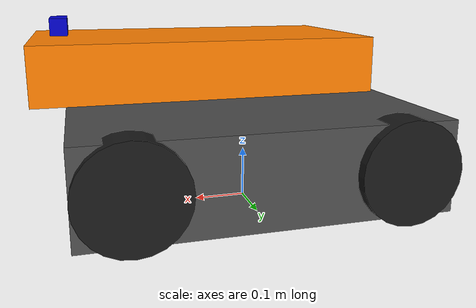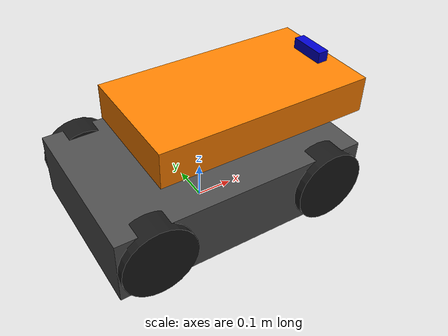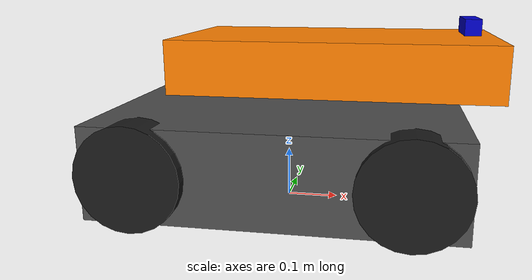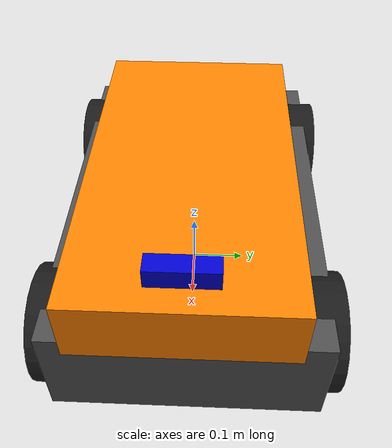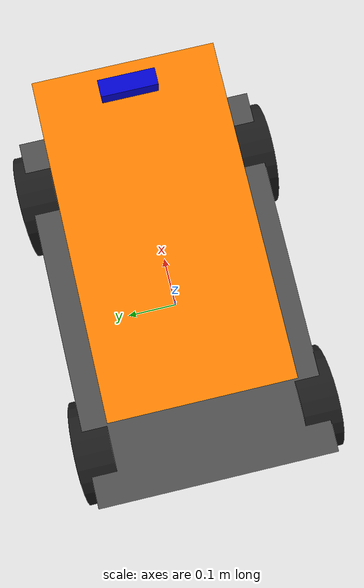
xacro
<?xml version="1.0"?>
<robot xmlns:xacro="http://www.ros.org/wiki/xacro" name="mecanum_robot">

  <!-- Define properties based on your CAD model -->
  <xacro:property name="base_length" value="0.7"/>  <!-- 700mm -->
  <xacro:property name="base_width" value="0.45"/>   <!-- 450mm -->
  <xacro:property name="base_height" value="0.18"/>  <!-- 180mm -->

  <!-- Mecanum wheel properties -->
  <xacro:property name="wheel_radius" value="0.1"/>  <!-- 100mm radius = 200mm diameter -->
  <xacro:property name="wheel_width" value="0.07"/>  <!-- 70mm width -->
  <xacro:property name="wheelbase" value="0.5"/>     <!-- 500mm front to back -->
  <xacro:property name="track_width" value="0.425"/> <!-- 425mm left to right -->

  <!-- Lifting arm properties -->
  <xacro:property name="arm_length" value="0.6"/>    <!-- 600mm -->
  <xacro:property name="arm_width" value="0.325"/>   <!-- 325mm -->
  <xacro:property name="arm_height" value="0.1"/>    <!-- 100mm -->

  <!-- Base Footprint -->
  <link name="base_footprint"/>

  <!-- Base Link (Main Chassis) -->
  <link name="base_link">
    <visual>
      <geometry>
        <box size="${base_length} ${base_width} ${base_height}"/>
      </geometry>
      <material name="dark_grey">
        <color rgba="0.3 0.3 0.3 1"/>
      </material>
    </visual>
    <collision>
      <geometry>
        <box size="${base_length} ${base_width} ${base_height}"/>
      </geometry>
    </collision>
    <inertial>
      <mass value="15.0"/>  <!-- Heavier base for your robot -->
      <inertia ixx="0.5" ixy="0.0" ixz="0.0" iyy="0.8" iyz="0.0" izz="1.0"/>
    </inertial>
  </link>

  <joint name="base_joint" type="fixed">
    <parent link="base_footprint"/>
    <child link="base_link"/>
    <origin xyz="0 0 ${wheel_radius}" rpy="0 0 0"/>
  </joint>

  <!-- Mecanum Wheels Macro -->
  <xacro:macro name="mecanum_wheel" params="prefix reflect_x reflect_y">
    <link name="${prefix}_wheel">
      <visual>
        <geometry>
          <cylinder radius="${wheel_radius}" length="${wheel_width}"/>
        </geometry>
        <material name="black">
          <color rgba="0.1 0.1 0.1 1"/>
        </material>
      </visual>
      <collision>
        <geometry>
          <cylinder radius="${wheel_radius}" length="${wheel_width}"/>
        </geometry>
      </collision>
      <inertial>
        <mass value="1.5"/>
        <inertia ixx="0.01" ixy="0.0" ixz="0.0" iyy="0.01" iyz="0.0" izz="0.015"/>
      </inertial>
    </link>

    <joint name="${prefix}_wheel_joint" type="continuous">
      <parent link="base_link"/>
      <child link="${prefix}_wheel"/>
      <origin xyz="${reflect_x*wheelbase/2} ${reflect_y*track_width/2} 0" rpy="-1.5707 0 0"/>
      <axis xyz="0 0 1"/>
    </joint>
  </xacro:macro>

  <!-- Create 4 mecanum wheels -->
  <xacro:mecanum_wheel prefix="front_left" reflect_x="1" reflect_y="1"/>
  <xacro:mecanum_wheel prefix="front_right" reflect_x="1" reflect_y="-1"/>
  <xacro:mecanum_wheel prefix="rear_left" reflect_x="-1" reflect_y="1"/>
  <xacro:mecanum_wheel prefix="rear_right" reflect_x="-1" reflect_y="-1"/>

  <!-- Lifting Arm Base -->
  <link name="arm_base">
    <visual>
      <geometry>
        <box size="${arm_length} ${arm_width} ${arm_height}"/>
      </geometry>
      <material name="orange">
        <color rgba="1.0 0.5 0.0 1"/>
      </material>
    </visual>
    <collision>
      <geometry>
        <box size="${arm_length} ${arm_width} ${arm_height}"/>
      </geometry>
    </collision>
    <inertial>
      <mass value="2.0"/>
      <inertia ixx="0.02" ixy="0.0" ixz="0.0" iyy="0.06" iyz="0.0" izz="0.06"/>
    </inertial>
  </link>

  <joint name="arm_base_joint" type="fixed">
    <parent link="base_link"/>
    <child link="arm_base"/>
    <origin xyz="0.1 0 ${base_height/2 + arm_height/2 + 0.05}" rpy="0 0 0"/>
  </joint>

  <!-- LiDAR Sensor (mounted on top) -->
  <link name="laser_link">
    <visual>
      <geometry>
        <cylinder radius="0.05" length="0.07"/>
      </geometry>
      <material name="red">
        <color rgba="1 0 0 1"/>
      </material>
    </visual>
    <collision>
      <geometry>
        <cylinder radius="0.05" length="0.07"/>
      </geometry>
    </collision>
    <inertial>
      <mass value="0.2"/>
      <inertia ixx="0.0001" ixy="0.0" ixz="0.0" iyy="0.0001" iyz="0.0" izz="0.0001"/>
    </inertial>
  </link>

  <joint name="laser_joint" type="fixed">
    <parent link="base_link"/>
    <child link="laser_link"/>
    <origin xyz="0.25 0 ${base_height/2 + 0.1}" rpy="0 0 0"/>
  </joint>

  <!-- Camera (USB Camera) -->
  <link name="camera_link">
    <visual>
      <geometry>
        <box size="0.03 0.1 0.03"/>
      </geometry>
      <material name="blue">
        <color rgba="0 0 0.8 1"/>
      </material>
    </visual>
    <collision>
      <geometry>
        <box size="0.03 0.1 0.03"/>
      </geometry>
    </collision>
    <inertial>
      <mass value="0.1"/>
      <inertia ixx="0.0001" ixy="0.0" ixz="0.0" iyy="0.0001" iyz="0.0" izz="0.0001"/>
    </inertial>
  </link>

  <joint name="camera_joint" type="fixed">
    <parent link="arm_base"/>
    <child link="camera_link"/>
    <origin xyz="${arm_length/2 - 0.05} 0 ${arm_height/2 + 0.02}" rpy="0 0 0"/>
  </joint>

  <!-- Gazebo Plugins -->

  <!-- Mecanum Drive Plugin -->
  <gazebo>
    <plugin name="mecanum_drive" filename="libgazebo_ros_planar_move.so">
      <update_rate>50</update_rate>
      <command_topic>cmd_vel</command_topic>
      <odometry_topic>odom</odometry_topic>
      <odometry_frame>odom</odometry_frame>
      <odometry_rate>50.0</odometry_rate>
      <robot_base_frame>base_footprint</robot_base_frame>
      <publish_odom>true</publish_odom>
      <publish_odom_tf>true</publish_odom_tf>
    </plugin>
  </gazebo>

  <!-- LiDAR Plugin -->
  <gazebo reference="laser_link">
    <sensor name="laser_sensor" type="ray">
      <pose>0 0 0 0 0 0</pose>
      <visualize>true</visualize>
      <update_rate>10</update_rate>
      <ray>
        <scan>
          <horizontal>
            <samples>360</samples>
            <resolution>1</resolution>
            <min_angle>-3.14159</min_angle>
            <max_angle>3.14159</max_angle>
          </horizontal>
        </scan>
        <range>
          <min>0.2</min>
          <max>10.0</max>
          <resolution>0.01</resolution>
        </range>
        <noise>
          <type>gaussian</type>
          <mean>0.0</mean>
          <stddev>0.01</stddev>
        </noise>
      </ray>
      <plugin name="laser_controller" filename="libgazebo_ros_ray_sensor.so">
        <ros>
          <namespace>/</namespace>
          <remapping>~/out:=scan</remapping>
        </ros>
        <output_type>sensor_msgs/LaserScan</output_type>
        <frame_name>laser_link</frame_name>
      </plugin>
    </sensor>
  </gazebo>

  <!-- Camera Plugin -->
  <gazebo reference="camera_link">
    <sensor name="camera" type="camera">
      <update_rate>30</update_rate>
      <camera>
        <horizontal_fov>1.047</horizontal_fov>
        <image>
          <width>640</width>
          <height>480</height>
          <format>R8G8B8</format>
        </image>
        <clip>
          <near>0.05</near>
          <far>10</far>
        </clip>
      </camera>
      <plugin name="camera_controller" filename="libgazebo_ros_camera.so">
        <ros>
          <namespace>/</namespace>
          <remapping>image_raw:=camera/image_raw</remapping>
          <remapping>camera_info:=camera/camera_info</remapping>
        </ros>
        <camera_name>camera</camera_name>
        <frame_name>camera_link</frame_name>
      </plugin>
    </sensor>
  </gazebo>

  <!-- Gazebo colors -->
  <gazebo reference="base_link">
    <material>Gazebo/DarkGrey</material>
  </gazebo>

  <gazebo reference="front_left_wheel">
    <material>Gazebo/Black</material>
    <mu1>0.8</mu1>
    <mu2>0.8</mu2>
  </gazebo>

  <gazebo reference="front_right_wheel">
    <material>Gazebo/Black</material>
    <mu1>0.8</mu1>
    <mu2>0.8</mu2>
  </gazebo>

  <gazebo reference="rear_left_wheel">
    <material>Gazebo/Black</material>
    <mu1>0.8</mu1>
    <mu2>0.8</mu2>
  </gazebo>

  <gazebo reference="rear_right_wheel">
    <material>Gazebo/Black</material>
    <mu1>0.8</mu1>
    <mu2>0.8</mu2>
  </gazebo>

  <gazebo reference="arm_base">
    <material>Gazebo/Orange</material>
  </gazebo>

  <gazebo reference="laser_link">
    <material>Gazebo/Red</material>
  </gazebo>

  <gazebo reference="camera_link">
    <material>Gazebo/Blue</material>
  </gazebo>

</robot>
